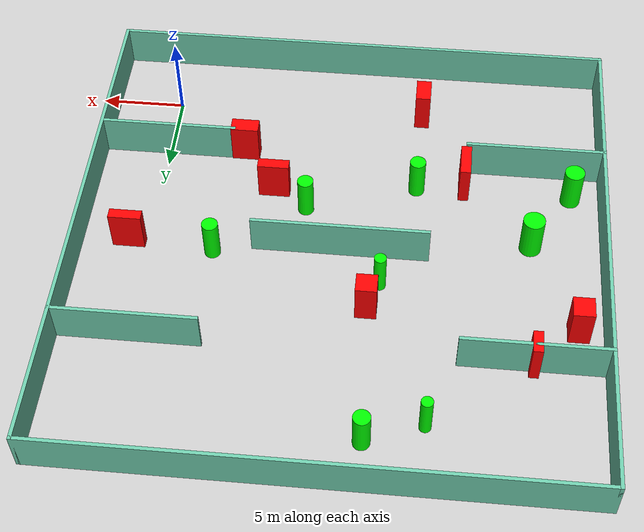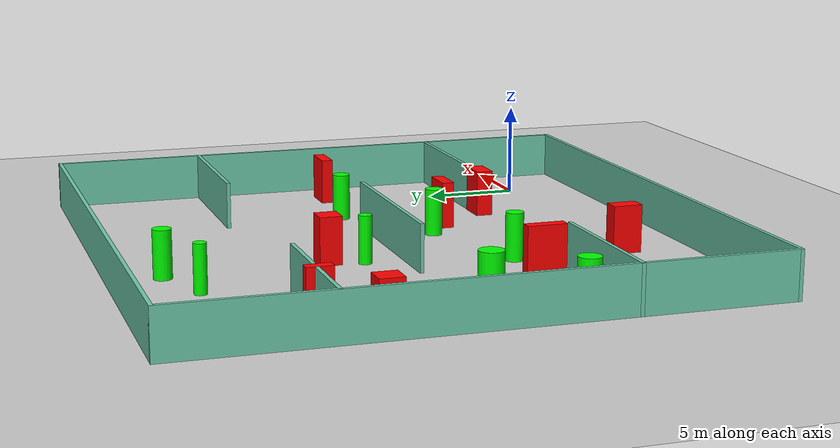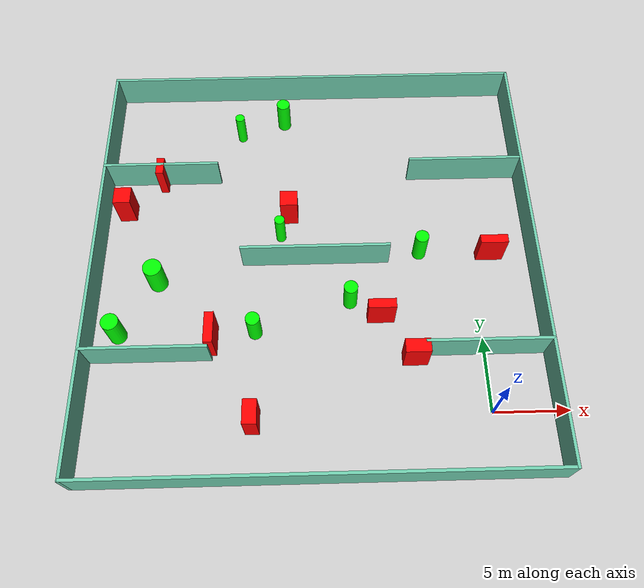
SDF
<sdf version="1.7">
 <world name="default">
  <light name="sun" type="directional">
   <pose>0 0 10 0 -0 0</pose>
   <diffuse>0.8 0.8 0.8 1</diffuse>
   <specular>0.2 0.2 0.2 1</specular>
   <attenuation>
    <range>1000</range>
    <constant>0.9</constant>
    <linear>0.01</linear>
    <quadratic>0.001</quadratic>
   </attenuation>
   <direction>-0.5 0.1 -0.9</direction>
   <spot><inner_angle>0</inner_angle><outer_angle>0</outer_angle><falloff>0</falloff></spot>
  </light>
  <model name="ground_plane">
   <static>1</static>
   <link name="link">
    <collision name="collision">
     <geometry><plane><normal>0 0 1</normal><size>100 100</size></plane></geometry>
     <surface>
      <contact><collide_bitmask>65535</collide_bitmask></contact>
      <friction><ode><mu>100</mu><mu2>50</mu2></ode></friction>
     </surface>
    </collision>
    <visual name="visual">
     <cast_shadows>0</cast_shadows>
     <geometry><plane><normal>0 0 1</normal><size>100 100</size></plane></geometry>
     <material>
      <script><uri>file://media/materials/scripts/gazebo.material</uri><name>Gazebo/Grey</name></script>
     </material>
    </visual>
   </link>
  </model>
  <gravity>0 0 -9.8</gravity>
  <magnetic_field>6e-06 2.3e-05 -4.2e-05</magnetic_field>
  <atmosphere type="adiabatic"/>
  <physics type="ode">
   <max_step_size>0.001</max_step_size>
   <real_time_factor>1</real_time_factor>
   <real_time_update_rate>1000</real_time_update_rate>
  </physics>
  <scene><ambient>0.4 0.4 0.4 1</ambient><background>0.7 0.7 0.7 1</background><shadows>1</shadows></scene>
  <spherical_coordinates>
   <surface_model>EARTH_WGS84</surface_model>
   <latitude_deg>0</latitude_deg>
   <longitude_deg>0</longitude_deg>
   <elevation>0</elevation>
   <heading_deg>0</heading_deg>
  </spherical_coordinates>
  <model name="my_base_walls">
   <link name="Wall_10">
    <collision name="Wall_10_Collision">
     <geometry><box><size>8.2 0.2 2.5</size></box></geometry>
     <pose>0 0 1.25 0 -0 0</pose>
    </collision>
    <visual name="Wall_10_Visual">
     <pose>0 0 1.25 0 -0 0</pose>
     <geometry><box><size>8.2 0.2 2.5</size></box></geometry>
     <material>
      <script><uri>file://media/materials/scripts/gazebo.material</uri><name>Gazebo/Grey</name></script>
      <ambient>0.435294 0.796078 0.67451 1</ambient>
     </material>
     <meta><layer>0</layer></meta>
    </visual>
    <pose>-11 -7 0 0 -0 0</pose>
   </link>
   <link name="Wall_12">
    <collision name="Wall_12_Collision">
     <geometry><box><size>8.2 0.2 2.5</size></box></geometry>
     <pose>0 0 1.25 0 -0 0</pose>
    </collision>
    <visual name="Wall_12_Visual">
     <pose>0 0 1.25 0 -0 0</pose>
     <geometry><box><size>8.2 0.2 2.5</size></box></geometry>
     <material>
      <script><uri>file://media/materials/scripts/gazebo.material</uri><name>Gazebo/Grey</name></script>
      <ambient>0.435294 0.796078 0.67451 1</ambient>
     </material>
     <meta><layer>0</layer></meta>
    </visual>
    <pose>-11 7 0 0 -0 0</pose>
   </link>
   <link name="Wall_14">
    <collision name="Wall_14_Collision">
     <geometry><box><size>8.2 0.2 2.5</size></box></geometry>
     <pose>0 0 1.25 0 -0 0</pose>
    </collision>
    <visual name="Wall_14_Visual">
     <pose>0 0 1.25 0 -0 0</pose>
     <geometry><box><size>8.2 0.2 2.5</size></box></geometry>
     <material>
      <script><uri>file://media/materials/scripts/gazebo.material</uri><name>Gazebo/Grey</name></script>
      <ambient>0.435294 0.796078 0.67451 1</ambient>
     </material>
     <meta><layer>0</layer></meta>
    </visual>
    <pose>11 7 0 0 -0 3.14159</pose>
   </link>
   <link name="Wall_16">
    <collision name="Wall_16_Collision">
     <geometry><box><size>10.2 0.2 2.5</size></box></geometry>
     <pose>0 0 1.25 0 -0 0</pose>
    </collision>
    <visual name="Wall_16_Visual">
     <pose>0 0 1.25 0 -0 0</pose>
     <geometry><box><size>10.2 0.2 2.5</size></box></geometry>
     <material>
      <script><uri>file://media/materials/scripts/gazebo.material</uri><name>Gazebo/Grey</name></script>
      <ambient>0.435294 0.796078 0.67451 1</ambient>
     </material>
     <meta><layer>0</layer></meta>
    </visual>
    <pose>0 0 0 0 -0 3.14159</pose>
   </link>
   <link name="Wall_2">
    <collision name="Wall_2_Collision">
     <geometry><box><size>30.2 0.2 2.5</size></box></geometry>
     <pose>0 0 1.25 0 -0 0</pose>
    </collision>
    <visual name="Wall_2_Visual">
     <pose>0 0 1.25 0 -0 0</pose>
     <geometry><box><size>30.2 0.2 2.5</size></box></geometry>
     <material>
      <script><uri>file://media/materials/scripts/gazebo.material</uri><name>Gazebo/Grey</name></script>
      <ambient>0.435294 0.796078 0.67451 1</ambient>
     </material>
     <meta><layer>0</layer></meta>
    </visual>
    <pose>0 -15 0 0 -0 3.14159</pose>
   </link>
   <link name="Wall_3">
    <collision name="Wall_3_Collision">
     <geometry><box><size>30.2 0.2 2.5</size></box></geometry>
     <pose>0 0 1.25 0 -0 0</pose>
    </collision>
    <visual name="Wall_3_Visual">
     <pose>0 0 1.25 0 -0 0</pose>
     <geometry><box><size>30.2 0.2 2.5</size></box></geometry>
     <material>
      <script><uri>file://media/materials/scripts/gazebo.material</uri><name>Gazebo/Grey</name></script>
      <ambient>0.435294 0.796078 0.67451 1</ambient>
     </material>
     <meta><layer>0</layer></meta>
    </visual>
    <pose>-15 0 0 0 -0 1.5708</pose>
   </link>
   <link name="Wall_4">
    <collision name="Wall_4_Collision">
     <geometry><box><size>30.2 0.2 2.5</size></box></geometry>
     <pose>0 0 1.25 0 -0 0</pose>
    </collision>
    <visual name="Wall_4_Visual">
     <pose>0 0 1.25 0 -0 0</pose>
     <geometry><box><size>30.2 0.2 2.5</size></box></geometry>
     <material>
      <script><uri>file://media/materials/scripts/gazebo.material</uri><name>Gazebo/Grey</name></script>
      <ambient>0.435294 0.796078 0.67451 1</ambient>
     </material>
     <meta><layer>0</layer></meta>
    </visual>
    <pose>0 15 0 0 -0 0</pose>
   </link>
   <link name="Wall_6">
    <collision name="Wall_6_Collision">
     <geometry><box><size>30.2 0.2 2.5</size></box></geometry>
     <pose>0 0 1.25 0 -0 0</pose>
    </collision>
    <visual name="Wall_6_Visual">
     <pose>0 0 1.25 0 -0 0</pose>
     <geometry><box><size>30.2 0.2 2.5</size></box></geometry>
     <material>
      <script><uri>file://media/materials/scripts/gazebo.material</uri><name>Gazebo/Grey</name></script>
      <ambient>0.435294 0.796078 0.67451 1</ambient>
     </material>
     <meta><layer>0</layer></meta>
    </visual>
    <pose>15 0 0 0 -0 1.5708</pose>
   </link>
   <link name="Wall_8">
    <collision name="Wall_8_Collision">
     <geometry><box><size>8.2 0.2 2.5</size></box></geometry>
     <pose>0 0 1.25 0 -0 0</pose>
    </collision>
    <visual name="Wall_8_Visual">
     <pose>0 0 1.25 0 -0 0</pose>
     <geometry><box><size>8.2 0.2 2.5</size></box></geometry>
     <material>
      <script><uri>file://media/materials/scripts/gazebo.material</uri><name>Gazebo/Grey</name></script>
      <ambient>0.435294 0.796078 0.67451 1</ambient>
     </material>
     <meta><layer>0</layer></meta>
    </visual>
    <pose>11 -7 0 0 -0 3.14159</pose>
   </link>
   <static>1</static>
   <pose>-11 11 0 0 -0 0</pose>
  </model>
  <model name="cylinder1">
   <static>1</static>
   <link name="link">
    <inertial>
     <mass>1</mass>
     <inertia><ixx>0.5</ixx><ixy>0</ixy><ixz>0</ixz><iyy>0.5</iyy><iyz>0</iyz><izz>1</izz></inertia>
    </inertial>
    <collision name="collision">
     <geometry><cylinder><radius>0.4758855820598218</radius><length>2.5</length></cylinder></geometry>
    </collision>
    <visual name="visual">
     <geometry><cylinder><radius>0.4758855820598218</radius><length>2.5</length></cylinder></geometry>
     <material>
      <ambient>0 1 0 1</ambient>
      <diffuse>0 1 0 1</diffuse>
      <specular>0.1 0.1 0.1 1</specular>
      <emissive>0 0 0 0</emissive>
     </material>
    </visual>
   </link>
   <pose>-13.222012635292273 23.269074043709583 1.25 0 0 0</pose>
  </model>
  <model name="cylinder2">
   <static>1</static>
   <link name="link">
    <inertial>
     <mass>1</mass>
     <inertia><ixx>0.5</ixx><ixy>0</ixy><ixz>0</ixz><iyy>0.5</iyy><iyz>0</iyz><izz>1</izz></inertia>
    </inertial>
    <collision name="collision">
     <geometry><cylinder><radius>0.3459339605829479</radius><length>2.5</length></cylinder></geometry>
    </collision>
    <visual name="visual">
     <geometry><cylinder><radius>0.3459339605829479</radius><length>2.5</length></cylinder></geometry>
     <material>
      <ambient>0 1 0 1</ambient>
      <diffuse>0 1 0 1</diffuse>
      <specular>0.1 0.1 0.1 1</specular>
      <emissive>0 0 0 0</emissive>
     </material>
    </visual>
   </link>
   <pose>-13.431669881403737 13.095718983945012 1.25 0 0 0</pose>
  </model>
  <model name="cylinder3">
   <static>1</static>
   <link name="link">
    <inertial>
     <mass>1</mass>
     <inertia><ixx>0.5</ixx><ixy>0</ixy><ixz>0</ixz><iyy>0.5</iyy><iyz>0</iyz><izz>1</izz></inertia>
    </inertial>
    <collision name="collision">
     <geometry><cylinder><radius>0.46407236643475647</radius><length>2.5</length></cylinder></geometry>
    </collision>
    <visual name="visual">
     <geometry><cylinder><radius>0.46407236643475647</radius><length>2.5</length></cylinder></geometry>
     <material>
      <ambient>0 1 0 1</ambient>
      <diffuse>0 1 0 1</diffuse>
      <specular>0.1 0.1 0.1 1</specular>
      <emissive>0 0 0 0</emissive>
     </material>
    </visual>
   </link>
   <pose>-8.709387814724703 7.847945486750792 1.25 0 0 0</pose>
  </model>
  <model name="cylinder4">
   <static>1</static>
   <link name="link">
    <inertial>
     <mass>1</mass>
     <inertia><ixx>0.5</ixx><ixy>0</ixy><ixz>0</ixz><iyy>0.5</iyy><iyz>0</iyz><izz>1</izz></inertia>
    </inertial>
    <collision name="collision">
     <geometry><cylinder><radius>0.6312667493855886</radius><length>2.5</length></cylinder></geometry>
    </collision>
    <visual name="visual">
     <geometry><cylinder><radius>0.6312667493855886</radius><length>2.5</length></cylinder></geometry>
     <material>
      <ambient>0 1 0 1</ambient>
      <diffuse>0 1 0 1</diffuse>
      <specular>0.1 0.1 0.1 1</specular>
      <emissive>0 0 0 0</emissive>
     </material>
    </visual>
   </link>
   <pose>-21.87437639698015 9.622087095399568 1.25 0 0 0</pose>
  </model>
  <model name="cylinder5">
   <static>1</static>
   <link name="link">
    <inertial>
     <mass>1</mass>
     <inertia><ixx>0.5</ixx><ixy>0</ixy><ixz>0</ixz><iyy>0.5</iyy><iyz>0</iyz><izz>1</izz></inertia>
    </inertial>
    <collision name="collision">
     <geometry><cylinder><radius>0.465206445010687</radius><length>2.5</length></cylinder></geometry>
    </collision>
    <visual name="visual">
     <geometry><cylinder><radius>0.465206445010687</radius><length>2.5</length></cylinder></geometry>
     <material>
      <ambient>0 1 0 1</ambient>
      <diffuse>0 1 0 1</diffuse>
      <specular>0.1 0.1 0.1 1</specular>
      <emissive>0 0 0 0</emissive>
     </material>
    </visual>
   </link>
   <pose>-3.707070894145236 11.543132481188755 1.25 0 0 0</pose>
  </model>
  <model name="cylinder6">
   <static>1</static>
   <link name="link">
    <inertial>
     <mass>1</mass>
     <inertia><ixx>0.5</ixx><ixy>0</ixy><ixz>0</ixz><iyy>0.5</iyy><iyz>0</iyz><izz>1</izz></inertia>
    </inertial>
    <collision name="collision">
     <geometry><cylinder><radius>0.4657959762059174</radius><length>2.5</length></cylinder></geometry>
    </collision>
    <visual name="visual">
     <geometry><cylinder><radius>0.4657959762059174</radius><length>2.5</length></cylinder></geometry>
     <material>
      <ambient>0 1 0 1</ambient>
      <diffuse>0 1 0 1</diffuse>
      <specular>0.1 0.1 0.1 1</specular>
      <emissive>0 0 0 0</emissive>
     </material>
    </visual>
   </link>
   <pose>-15.116010033514536 5.771917425110441 1.25 0 0 0</pose>
  </model>
  <model name="cylinder7">
   <static>1</static>
   <link name="link">
    <inertial>
     <mass>1</mass>
     <inertia><ixx>0.5</ixx><ixy>0</ixy><ixz>0</ixz><iyy>0.5</iyy><iyz>0</iyz><izz>1</izz></inertia>
    </inertial>
    <collision name="collision">
     <geometry><cylinder><radius>0.33216699361654084</radius><length>2.5</length></cylinder></geometry>
    </collision>
    <visual name="visual">
     <geometry><cylinder><radius>0.33216699361654084</radius><length>2.5</length></cylinder></geometry>
     <material>
      <ambient>0 1 0 1</ambient>
      <diffuse>0 1 0 1</diffuse>
      <specular>0.1 0.1 0.1 1</specular>
      <emissive>0 0 0 0</emissive>
     </material>
    </visual>
   </link>
   <pose>-16.44104663869322 22.0609790888083 1.25 0 0 0</pose>
  </model>
  <model name="cylinder8">
   <static>1</static>
   <link name="link">
    <inertial>
     <mass>1</mass>
     <inertia><ixx>0.5</ixx><ixy>0</ixy><ixz>0</ixz><iyy>0.5</iyy><iyz>0</iyz><izz>1</izz></inertia>
    </inertial>
    <collision name="collision">
     <geometry><cylinder><radius>0.5754915030353911</radius><length>2.5</length></cylinder></geometry>
    </collision>
    <visual name="visual">
     <geometry><cylinder><radius>0.5754915030353911</radius><length>2.5</length></cylinder></geometry>
     <material>
      <ambient>0 1 0 1</ambient>
      <diffuse>0 1 0 1</diffuse>
      <specular>0.1 0.1 0.1 1</specular>
      <emissive>0 0 0 0</emissive>
     </material>
    </visual>
   </link>
   <pose>-24.23427141686743 5.777442954908214 1.25 0 0 0</pose>
  </model>
  <model name="box1">
   <static>1</static>
   <link name="link">
    <inertial>
     <mass>1</mass>
     <inertia><ixx>0.083</ixx><ixy>0</ixy><ixz>0</ixz><iyy>0.083</iyy><iyz>0</iyz><izz>0.083</izz></inertia>
    </inertial>
    <collision name="collision">
     <geometry><box><size>0.5386021654116024 1.3195445816379803 2.5</size></box></geometry>
    </collision>
    <visual name="visual">
     <geometry><box><size>0.5386021654116024 1.3195445816379803 2.5</size></box></geometry>
     <material>
      <ambient>1 0 0 1</ambient>
      <diffuse>1 0 0 1</diffuse>
      <specular>0.1 0.1 0.1 1</specular>
      <emissive>0 0 0 0</emissive>
     </material>
    </visual>
    <sensor name="my_contact" type="contact">
     <contact><collision>box_collision</collision><topic>__default_topic__</topic></contact>
    </sensor>
   </link>
   <pose>-22.050113637507827 17.853085932778495 1.25 0 0 0</pose>
  </model>
  <model name="box2">
   <static>1</static>
   <link name="link">
    <inertial>
     <mass>1</mass>
     <inertia><ixx>0.083</ixx><ixy>0</ixy><ixz>0</ixz><iyy>0.083</iyy><iyz>0</iyz><izz>0.083</izz></inertia>
    </inertial>
    <collision name="collision">
     <geometry><box><size>0.6050064827918809 2.0788879793067485 2.5</size></box></geometry>
    </collision>
    <visual name="visual">
     <geometry><box><size>0.6050064827918809 2.0788879793067485 2.5</size></box></geometry>
     <material>
      <ambient>1 0 0 1</ambient>
      <diffuse>1 0 0 1</diffuse>
      <specular>0.1 0.1 0.1 1</specular>
      <emissive>0 0 0 0</emissive>
     </material>
    </visual>
    <sensor name="my_contact" type="contact">
     <contact><collision>box_collision</collision><topic>__default_topic__</topic></contact>
    </sensor>
   </link>
   <pose>-17.914569046586767 5.281616427991004 1.25 0 0 0</pose>
  </model>
  <model name="box3">
   <static>1</static>
   <link name="link">
    <inertial>
     <mass>1</mass>
     <inertia><ixx>0.083</ixx><ixy>0</ixy><ixz>0</ixz><iyy>0.083</iyy><iyz>0</iyz><izz>0.083</izz></inertia>
    </inertial>
    <collision name="collision">
     <geometry><box><size>1.193062023203002 1.2398895836291206 2.5</size></box></geometry>
    </collision>
    <visual name="visual">
     <geometry><box><size>1.193062023203002 1.2398895836291206 2.5</size></box></geometry>
     <material>
      <ambient>1 0 0 1</ambient>
      <diffuse>1 0 0 1</diffuse>
      <specular>0.1 0.1 0.1 1</specular>
      <emissive>0 0 0 0</emissive>
     </material>
    </visual>
    <sensor name="my_contact" type="contact">
     <contact><collision>box_collision</collision><topic>__default_topic__</topic></contact>
    </sensor>
   </link>
   <pose>-24.496380059435797 15.401260269962606 1.25 0 0 0</pose>
  </model>
  <model name="box4">
   <static>1</static>
   <link name="link">
    <inertial>
     <mass>1</mass>
     <inertia><ixx>0.083</ixx><ixy>0</ixy><ixz>0</ixz><iyy>0.083</iyy><iyz>0</iyz><izz>0.083</izz></inertia>
    </inertial>
    <collision name="collision">
     <geometry><box><size>0.8947555860483647 1.5539575011952989 2.5</size></box></geometry>
    </collision>
    <visual name="visual">
     <geometry><box><size>0.8947555860483647 1.5539575011952989 2.5</size></box></geometry>
     <material>
      <ambient>1 0 0 1</ambient>
      <diffuse>1 0 0 1</diffuse>
      <specular>0.1 0.1 0.1 1</specular>
      <emissive>0 0 0 0</emissive>
     </material>
    </visual>
    <sensor name="my_contact" type="contact">
     <contact><collision>box_collision</collision><topic>__default_topic__</topic></contact>
    </sensor>
   </link>
   <pose>-15.155078592558775 -0.2536207677961304 1.25 0 0 0</pose>
  </model>
  <model name="box5">
   <static>1</static>
   <link name="link">
    <inertial>
     <mass>1</mass>
     <inertia><ixx>0.083</ixx><ixy>0</ixy><ixz>0</ixz><iyy>0.083</iyy><iyz>0</iyz><izz>0.083</izz></inertia>
    </inertial>
    <collision name="collision">
     <geometry><box><size>1.6408976096540524 0.8992344099552404 2.5</size></box></geometry>
    </collision>
    <visual name="visual">
     <geometry><box><size>1.6408976096540524 0.8992344099552404 2.5</size></box></geometry>
     <material>
      <ambient>1 0 0 1</ambient>
      <diffuse>1 0 0 1</diffuse>
      <specular>0.1 0.1 0.1 1</specular>
      <emissive>0 0 0 0</emissive>
     </material>
    </visual>
    <sensor name="my_contact" type="contact">
     <contact><collision>box_collision</collision><topic>__default_topic__</topic></contact>
    </sensor>
   </link>
   <pose>-4.629346796423231 3.696087983697648 1.25 0 0 0</pose>
  </model>
  <model name="box6">
   <static>1</static>
   <link name="link">
    <inertial>
     <mass>1</mass>
     <inertia><ixx>0.083</ixx><ixy>0</ixy><ixz>0</ixz><iyy>0.083</iyy><iyz>0</iyz><izz>0.083</izz></inertia>
    </inertial>
    <collision name="collision">
     <geometry><box><size>1.8723706550732508 0.6125631305881557 2.5</size></box></geometry>
    </collision>
    <visual name="visual">
     <geometry><box><size>1.8723706550732508 0.6125631305881557 2.5</size></box></geometry>
     <material>
      <ambient>1 0 0 1</ambient>
      <diffuse>1 0 0 1</diffuse>
      <specular>0.1 0.1 0.1 1</specular>
      <emissive>0 0 0 0</emissive>
     </material>
    </visual>
    <sensor name="my_contact" type="contact">
     <contact><collision>box_collision</collision><topic>__default_topic__</topic></contact>
    </sensor>
   </link>
   <pose>1.1750501776051685 11.240619587285076 1.25 0 0 0</pose>
  </model>
  <model name="box7">
   <static>1</static>
   <link name="link">
    <inertial>
     <mass>1</mass>
     <inertia><ixx>0.083</ixx><ixy>0</ixy><ixz>0</ixz><iyy>0.083</iyy><iyz>0</iyz><izz>0.083</izz></inertia>
    </inertial>
    <collision name="collision">
     <geometry><box><size>1.8307389937135345 0.6464203112953851 2.5</size></box></geometry>
    </collision>
    <visual name="visual">
     <geometry><box><size>1.8307389937135345 0.6464203112953851 2.5</size></box></geometry>
     <material>
      <ambient>1 0 0 1</ambient>
      <diffuse>1 0 0 1</diffuse>
      <specular>0.1 0.1 0.1 1</specular>
      <emissive>0 0 0 0</emissive>
     </material>
    </visual>
    <sensor name="my_contact" type="contact">
     <contact><collision>box_collision</collision><topic>__default_topic__</topic></contact>
    </sensor>
   </link>
   <pose>-6.706575769409355 6.640617542472285 1.25 0 0 0</pose>
  </model>
  <model name="box8">
   <static>1</static>
   <link name="link">
    <inertial>
     <mass>1</mass>
     <inertia><ixx>0.083</ixx><ixy>0</ixy><ixz>0</ixz><iyy>0.083</iyy><iyz>0</iyz><izz>0.083</izz></inertia>
    </inertial>
    <collision name="collision">
     <geometry><box><size>1.1987729859372753 1.1697679003078254 2.5</size></box></geometry>
    </collision>
    <visual name="visual">
     <geometry><box><size>1.1987729859372753 1.1697679003078254 2.5</size></box></geometry>
     <material>
      <ambient>1 0 0 1</ambient>
      <diffuse>1 0 0 1</diffuse>
      <specular>0.1 0.1 0.1 1</specular>
      <emissive>0 0 0 0</emissive>
     </material>
    </visual>
    <sensor name="my_contact" type="contact">
     <contact><collision>box_collision</collision><topic>__default_topic__</topic></contact>
    </sensor>
   </link>
   <pose>-12.807727818294124 14.85233088173689 1.25 0 0 0</pose>
  </model>
 </world>
</sdf>
